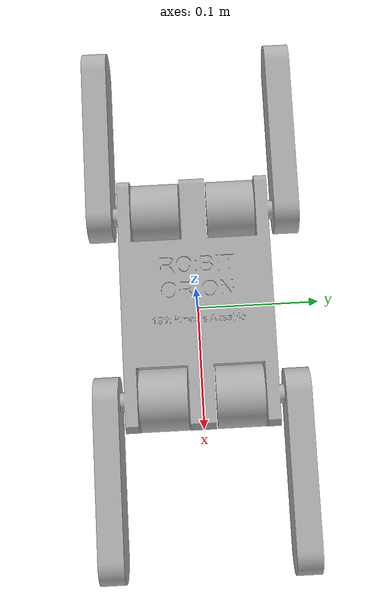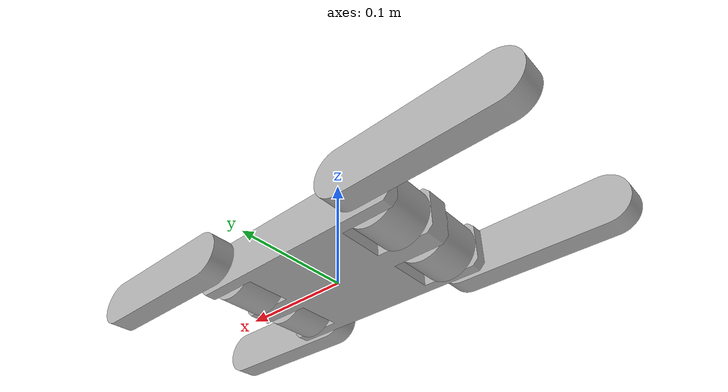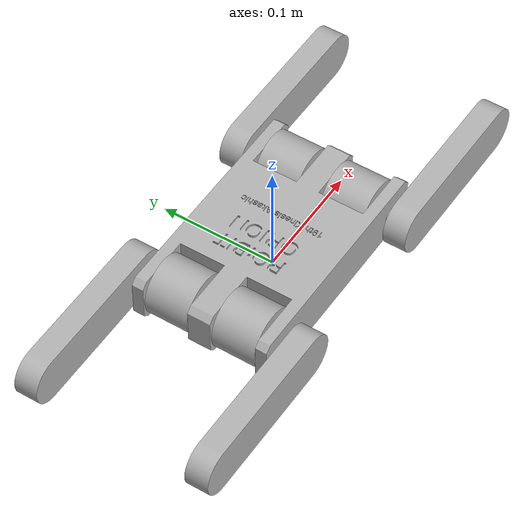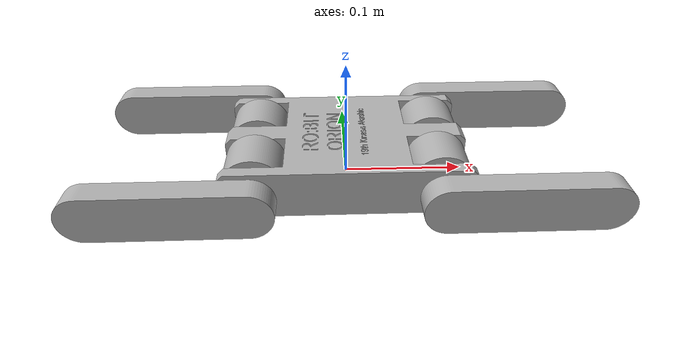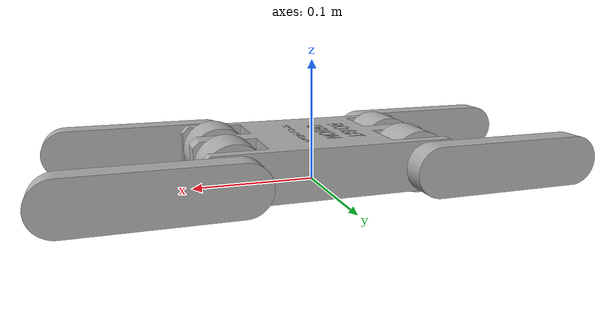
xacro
<?xml version="1.0"?>
<robot xmlns:xacro="http://www.ros.org/wiki/xacro" name="orion">
    <xacro:arg name="initial_positions_file" default="initial_positions.yaml" />

    <!-- Import orion urdf file -->
    <xacro:include filename="$(find orion_description)/urdf/orion.urdf" />

    <!-- Import control_xacro -->
    <xacro:include filename="orion.ros2_control.xacro" />

    <xacro:orion_ros2_control name="FakeSystem" initial_positions_file="$(arg initial_positions_file)"/>

</robot>

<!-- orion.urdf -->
<!-- |    This document was autogenerated by xacro from orion.xacro                    | -->
<!-- |    EDITING THIS FILE BY HAND IS NOT RECOMMENDED                                 | -->
<robot name="orion">
  <material name="silver">
    <color rgba="0.700 0.700 0.700 1.000"/>
  </material>
  <transmission name="joint_wheel_front_right_tran">
    <type>transmission_interface/SimpleTransmission</type>
    <joint name="joint_wheel_front_right">
      <hardwareInterface>hardware_interface/EffortJointInterface</hardwareInterface>
    </joint>
    <actuator name="joint_wheel_front_right_actr">
      <hardwareInterface>hardware_interface/EffortJointInterface</hardwareInterface>
      <mechanicalReduction>1</mechanicalReduction>
    </actuator>
  </transmission>
  <transmission name="joint_wheel_front_left_tran">
    <type>transmission_interface/SimpleTransmission</type>
    <joint name="joint_wheel_front_left">
      <hardwareInterface>hardware_interface/EffortJointInterface</hardwareInterface>
    </joint>
    <actuator name="joint_wheel_front_left_actr">
      <hardwareInterface>hardware_interface/EffortJointInterface</hardwareInterface>
      <mechanicalReduction>1</mechanicalReduction>
    </actuator>
  </transmission>
  <transmission name="joint_wheel_back_right_tran">
    <type>transmission_interface/SimpleTransmission</type>
    <joint name="joint_wheel_back_right">
      <hardwareInterface>hardware_interface/EffortJointInterface</hardwareInterface>
    </joint>
    <actuator name="joint_wheel_back_right_actr">
      <hardwareInterface>hardware_interface/EffortJointInterface</hardwareInterface>
      <mechanicalReduction>1</mechanicalReduction>
    </actuator>
  </transmission>
  <transmission name="joint_wheel_back_left_tran">
    <type>transmission_interface/SimpleTransmission</type>
    <joint name="joint_wheel_back_left">
      <hardwareInterface>hardware_interface/EffortJointInterface</hardwareInterface>
    </joint>
    <actuator name="joint_wheel_back_left_actr">
      <hardwareInterface>hardware_interface/EffortJointInterface</hardwareInterface>
      <mechanicalReduction>1</mechanicalReduction>
    </actuator>
  </transmission>
  <transmission name="joint_flipper_arm_front_right_tran">
    <type>transmission_interface/SimpleTransmission</type>
    <joint name="joint_flipper_arm_front_right">
      <hardwareInterface>hardware_interface/EffortJointInterface</hardwareInterface>
    </joint>
    <actuator name="joint_flipper_arm_front_right_actr">
      <hardwareInterface>hardware_interface/EffortJointInterface</hardwareInterface>
      <mechanicalReduction>1</mechanicalReduction>
    </actuator>
  </transmission>
  <transmission name="joint_flipper_arm_front_left_tran">
    <type>transmission_interface/SimpleTransmission</type>
    <joint name="joint_flipper_arm_front_left">
      <hardwareInterface>hardware_interface/EffortJointInterface</hardwareInterface>
    </joint>
    <actuator name="joint_flipper_arm_front_left_actr">
      <hardwareInterface>hardware_interface/EffortJointInterface</hardwareInterface>
      <mechanicalReduction>1</mechanicalReduction>
    </actuator>
  </transmission>
  <transmission name="joint_flipper_arm_back_left_tran">
    <type>transmission_interface/SimpleTransmission</type>
    <joint name="joint_flipper_arm_back_left">
      <hardwareInterface>hardware_interface/EffortJointInterface</hardwareInterface>
    </joint>
    <actuator name="joint_flipper_arm_back_left_actr">
      <hardwareInterface>hardware_interface/EffortJointInterface</hardwareInterface>
      <mechanicalReduction>1</mechanicalReduction>
    </actuator>
  </transmission>
  <transmission name="joint_flipper_arm_back_right_tran">
    <type>transmission_interface/SimpleTransmission</type>
    <joint name="joint_flipper_arm_back_right">
      <hardwareInterface>hardware_interface/EffortJointInterface</hardwareInterface>
    </joint>
    <actuator name="joint_flipper_arm_back_right_actr">
      <hardwareInterface>hardware_interface/EffortJointInterface</hardwareInterface>
      <mechanicalReduction>1</mechanicalReduction>
    </actuator>
  </transmission>
  <gazebo>
    <plugin filename="libgazebo_ros_control.so" name="control"/>
  </gazebo>
  <gazebo reference="base_link">
    <material>Gazebo/Silver</material>
    <mu1>0.2</mu1>
    <mu2>0.2</mu2>
    <selfCollide>true</selfCollide>
    <gravity>true</gravity>
  </gazebo>
  <gazebo reference="wheel_front_right_1">
    <material>Gazebo/Silver</material>
    <mu1>0.2</mu1>
    <mu2>0.2</mu2>
    <selfCollide>true</selfCollide>
  </gazebo>
  <gazebo reference="wheel_front_left_1">
    <material>Gazebo/Silver</material>
    <mu1>0.2</mu1>
    <mu2>0.2</mu2>
    <selfCollide>true</selfCollide>
  </gazebo>
  <gazebo reference="wheel_back_right_1">
    <material>Gazebo/Silver</material>
    <mu1>0.2</mu1>
    <mu2>0.2</mu2>
    <selfCollide>true</selfCollide>
  </gazebo>
  <gazebo reference="wheel_back_left_1">
    <material>Gazebo/Silver</material>
    <mu1>0.2</mu1>
    <mu2>0.2</mu2>
    <selfCollide>true</selfCollide>
  </gazebo>
  <gazebo reference="flipper_arm_front_right_1">
    <material>Gazebo/Silver</material>
    <mu1>0.2</mu1>
    <mu2>0.2</mu2>
    <selfCollide>true</selfCollide>
  </gazebo>
  <gazebo reference="flipper_arm_front_left_1">
    <material>Gazebo/Silver</material>
    <mu1>0.2</mu1>
    <mu2>0.2</mu2>
    <selfCollide>true</selfCollide>
  </gazebo>
  <gazebo reference="flipper_arm_back_left_1">
    <material>Gazebo/Silver</material>
    <mu1>0.2</mu1>
    <mu2>0.2</mu2>
    <selfCollide>true</selfCollide>
  </gazebo>
  <gazebo reference="flipper_arm_back_right_1">
    <material>Gazebo/Silver</material>
    <mu1>0.2</mu1>
    <mu2>0.2</mu2>
    <selfCollide>true</selfCollide>
  </gazebo>
  <link name="base_link">
    <inertial>
      <origin rpy="0 0 0" xyz="2.544189114012434e-05 -1.0248795714939028e-06 0.019962113672761496"/>
      <mass value="5.02602086717874"/>
      <inertia ixx="0.00719" ixy="0.0" ixz="-2e-06" iyy="0.011128" iyz="0.0" izz="0.016995"/>
    </inertial>
    <visual>
      <origin rpy="0 0 0" xyz="0 0 0"/>
      <geometry>
        <mesh filename="package://orion_description/meshes/base_link.stl" scale="0.001 0.001 0.001"/>
      </geometry>
      <material name="silver"/>
    </visual>
    <collision>
      <origin rpy="0 0 0" xyz="0 0 0"/>
      <geometry>
        <mesh filename="package://orion_description/meshes/base_link.stl" scale="0.001 0.001 0.001"/>
      </geometry>
    </collision>
  </link>
  <link name="wheel_front_right_1">
    <inertial>
      <origin rpy="0 0 0" xyz="1.3877787807814457e-17 0.020000000000000007 -3.469446951953614e-18"/>
      <mass value="0.585710680353647"/>
      <inertia ixx="0.000162" ixy="0.0" ixz="0.0" iyy="0.000183" iyz="0.0" izz="0.000162"/>
    </inertial>
    <visual>
      <origin rpy="0 0 0" xyz="-0.075 0.05 -0.02"/>
      <geometry>
        <mesh filename="package://orion_description/meshes/wheel_front_right_1.stl" scale="0.001 0.001 0.001"/>
      </geometry>
      <material name="silver"/>
    </visual>
    <collision>
      <origin rpy="0 0 0" xyz="-0.075 0.05 -0.02"/>
      <geometry>
        <mesh filename="package://orion_description/meshes/wheel_front_right_1.stl" scale="0.001 0.001 0.001"/>
      </geometry>
    </collision>
  </link>
  <link name="wheel_front_left_1">
    <inertial>
      <origin rpy="0 0 0" xyz="0.0 0.02000000000000001 -3.469446951953614e-18"/>
      <mass value="0.585710680353647"/>
      <inertia ixx="0.000162" ixy="0.0" ixz="0.0" iyy="0.000183" iyz="0.0" izz="0.000162"/>
    </inertial>
    <visual>
      <origin rpy="0 0 0" xyz="-0.075 -0.01 -0.02"/>
      <geometry>
        <mesh filename="package://orion_description/meshes/wheel_front_left_1.stl" scale="0.001 0.001 0.001"/>
      </geometry>
      <material name="silver"/>
    </visual>
    <collision>
      <origin rpy="0 0 0" xyz="-0.075 -0.01 -0.02"/>
      <geometry>
        <mesh filename="package://orion_description/meshes/wheel_front_left_1.stl" scale="0.001 0.001 0.001"/>
      </geometry>
    </collision>
  </link>
  <link name="wheel_back_right_1">
    <inertial>
      <origin rpy="0 0 0" xyz="-1.3877787807814457e-17 0.020000000000000007 -3.469446951953614e-18"/>
      <mass value="0.585710680353647"/>
      <inertia ixx="0.000162" ixy="0.0" ixz="-0.0" iyy="0.000183" iyz="0.0" izz="0.000162"/>
    </inertial>
    <visual>
      <origin rpy="0 0 0" xyz="0.075 0.05 -0.02"/>
      <geometry>
        <mesh filename="package://orion_description/meshes/wheel_back_right_1.stl" scale="0.001 0.001 0.001"/>
      </geometry>
      <material name="silver"/>
    </visual>
    <collision>
      <origin rpy="0 0 0" xyz="0.075 0.05 -0.02"/>
      <geometry>
        <mesh filename="package://orion_description/meshes/wheel_back_right_1.stl" scale="0.001 0.001 0.001"/>
      </geometry>
    </collision>
  </link>
  <link name="wheel_back_left_1">
    <inertial>
      <origin rpy="0 0 0" xyz="-1.3877787807814457e-17 0.02000000000000001 -3.469446951953614e-18"/>
      <mass value="0.585710680353647"/>
      <inertia ixx="0.000162" ixy="-0.0" ixz="-0.0" iyy="0.000183" iyz="0.0" izz="0.000162"/>
    </inertial>
    <visual>
      <origin rpy="0 0 0" xyz="0.075 -0.01 -0.02"/>
      <geometry>
        <mesh filename="package://orion_description/meshes/wheel_back_left_1.stl" scale="0.001 0.001 0.001"/>
      </geometry>
      <material name="silver"/>
    </visual>
    <collision>
      <origin rpy="0 0 0" xyz="0.075 -0.01 -0.02"/>
      <geometry>
        <mesh filename="package://orion_description/meshes/wheel_back_left_1.stl" scale="0.001 0.001 0.001"/>
      </geometry>
    </collision>
  </link>
  <link name="flipper_arm_front_right_1">
    <inertial>
      <origin rpy="0 0 0" xyz="0.06000000000000001 -0.010000000000000009 3.469446951953614e-18"/>
      <mass value="0.9508920186454388"/>
      <inertia ixx="0.000152" ixy="-0.0" ixz="0.0" iyy="0.001955" iyz="-0.0" izz="0.001867"/>
    </inertial>
    <visual>
      <origin rpy="0 0 0" xyz="-0.075 0.065 -0.02"/>
      <geometry>
        <mesh filename="package://orion_description/meshes/flipper_arm_front_right_1.stl" scale="0.001 0.001 0.001"/>
      </geometry>
      <material name="silver"/>
    </visual>
    <collision>
      <origin rpy="0 0 0" xyz="-0.075 0.065 -0.02"/>
      <geometry>
        <mesh filename="package://orion_description/meshes/flipper_arm_front_right_1.stl" scale="0.001 0.001 0.001"/>
      </geometry>
    </collision>
  </link>
  <link name="flipper_arm_front_left_1">
    <inertial>
      <origin rpy="0 0 0" xyz="0.06000000055879355 0.009999999999999995 2.9802322068506193e-10"/>
      <mass value="0.9508920116269921"/>
      <inertia ixx="0.000152" ixy="0.0" ixz="0.0" iyy="0.001955" iyz="-0.0" izz="0.001867"/>
    </inertial>
    <visual>
      <origin rpy="0 0 0" xyz="-0.075 -0.065 -0.02"/>
      <geometry>
        <mesh filename="package://orion_description/meshes/flipper_arm_front_left_1.stl" scale="0.001 0.001 0.001"/>
      </geometry>
      <material name="silver"/>
    </visual>
    <collision>
      <origin rpy="0 0 0" xyz="-0.075 -0.065 -0.02"/>
      <geometry>
        <mesh filename="package://orion_description/meshes/flipper_arm_front_left_1.stl" scale="0.001 0.001 0.001"/>
      </geometry>
    </collision>
  </link>
  <link name="flipper_arm_back_left_1">
    <inertial>
      <origin rpy="0 0 0" xyz="-0.06000000111758706 0.009999999999999995 2.9802329007400097e-10"/>
      <mass value="0.9508920186454392"/>
      <inertia ixx="0.000152" ixy="0.0" ixz="0.0" iyy="0.001955" iyz="0.0" izz="0.001867"/>
    </inertial>
    <visual>
      <origin rpy="0 0 0" xyz="0.075 -0.065 -0.02"/>
      <geometry>
        <mesh filename="package://orion_description/meshes/flipper_arm_back_left_1.stl" scale="0.001 0.001 0.001"/>
      </geometry>
      <material name="silver"/>
    </visual>
    <collision>
      <origin rpy="0 0 0" xyz="0.075 -0.065 -0.02"/>
      <geometry>
        <mesh filename="package://orion_description/meshes/flipper_arm_back_left_1.stl" scale="0.001 0.001 0.001"/>
      </geometry>
    </collision>
  </link>
  <link name="flipper_arm_back_right_1">
    <inertial>
      <origin rpy="0 0 0" xyz="-0.059999999999999984 -0.009999999999999995 3.469446951953614e-18"/>
      <mass value="0.9508920186454392"/>
      <inertia ixx="0.000152" ixy="-0.0" ixz="0.0" iyy="0.001955" iyz="0.0" izz="0.001867"/>
    </inertial>
    <visual>
      <origin rpy="0 0 0" xyz="0.075 0.065 -0.02"/>
      <geometry>
        <mesh filename="package://orion_description/meshes/flipper_arm_back_right_1.stl" scale="0.001 0.001 0.001"/>
      </geometry>
      <material name="silver"/>
    </visual>
    <collision>
      <origin rpy="0 0 0" xyz="0.075 0.065 -0.02"/>
      <geometry>
        <mesh filename="package://orion_description/meshes/flipper_arm_back_right_1.stl" scale="0.001 0.001 0.001"/>
      </geometry>
    </collision>
  </link>
  <joint name="joint_wheel_front_right" type="continuous">
    <origin rpy="0 0 0" xyz="0.075 -0.05 0.02"/>
    <parent link="base_link"/>
    <child link="wheel_front_right_1"/>
    <axis xyz="0.0 1.0 0.0"/>
  </joint>
  <joint name="joint_wheel_front_left" type="continuous">
    <origin rpy="0 0 0" xyz="0.075 0.01 0.02"/>
    <parent link="base_link"/>
    <child link="wheel_front_left_1"/>
    <axis xyz="0.0 1.0 0.0"/>
  </joint>
  <joint name="joint_wheel_back_right" type="continuous">
    <origin rpy="0 0 0" xyz="-0.075 -0.05 0.02"/>
    <parent link="base_link"/>
    <child link="wheel_back_right_1"/>
    <axis xyz="0.0 1.0 0.0"/>
  </joint>
  <joint name="joint_wheel_back_left" type="continuous">
    <origin rpy="0 0 0" xyz="-0.075 0.01 0.02"/>
    <parent link="base_link"/>
    <child link="wheel_back_left_1"/>
    <axis xyz="0.0 1.0 0.0"/>
  </joint>
  <joint name="joint_flipper_arm_front_right" type="revolute">
    <origin rpy="0 0 0" xyz="0.075 -0.065 0.02"/>
    <parent link="base_link"/>
    <child link="flipper_arm_front_right_1"/>
    <axis xyz="0.0 -1.0 0.0"/>
    <limit effort="100" lower="-1.570796" upper="1.570796" velocity="100"/>
  </joint>
  <joint name="joint_flipper_arm_front_left" type="revolute">
    <origin rpy="0 0 0" xyz="0.075 0.065 0.02"/>
    <parent link="base_link"/>
    <child link="flipper_arm_front_left_1"/>
    <axis xyz="0.0 1.0 0.0"/>
    <limit effort="100" lower="-1.570796" upper="1.570796" velocity="100"/>
  </joint>
  <joint name="joint_flipper_arm_back_left" type="revolute">
    <origin rpy="0 0 0" xyz="-0.075 0.065 0.02"/>
    <parent link="base_link"/>
    <child link="flipper_arm_back_left_1"/>
    <axis xyz="0.0 1.0 0.0"/>
    <limit effort="100" lower="-1.570796" upper="1.570796" velocity="100"/>
  </joint>
  <joint name="joint_flipper_arm_back_right" type="revolute">
    <origin rpy="0 0 0" xyz="-0.075 -0.065 0.02"/>
    <parent link="base_link"/>
    <child link="flipper_arm_back_right_1"/>
    <axis xyz="0.0 -1.0 0.0"/>
    <limit effort="100" lower="-1.570796" upper="1.570796" velocity="100"/>
  </joint>
</robot>
